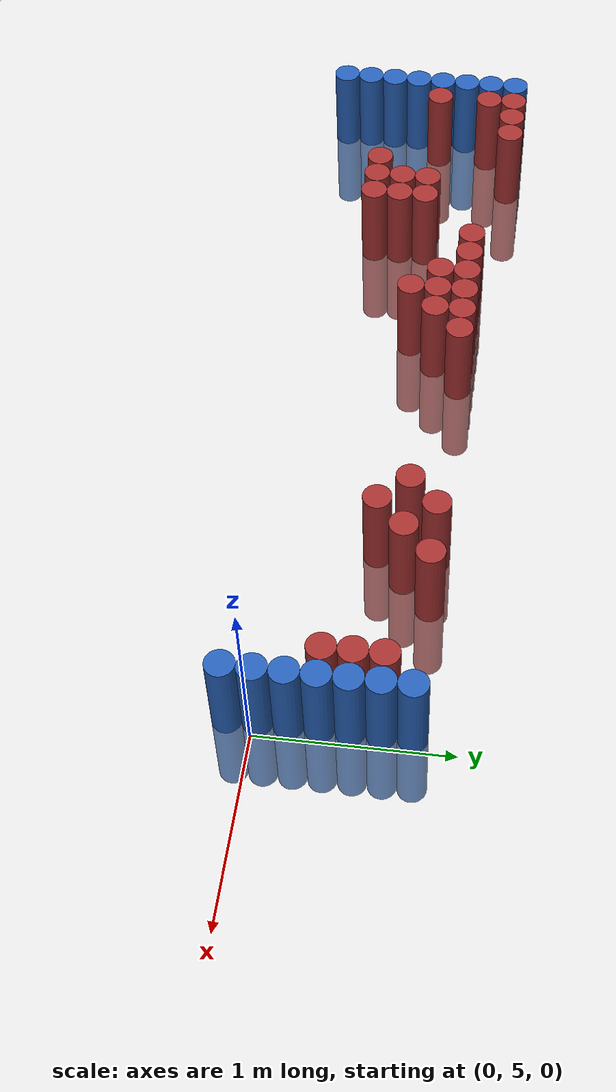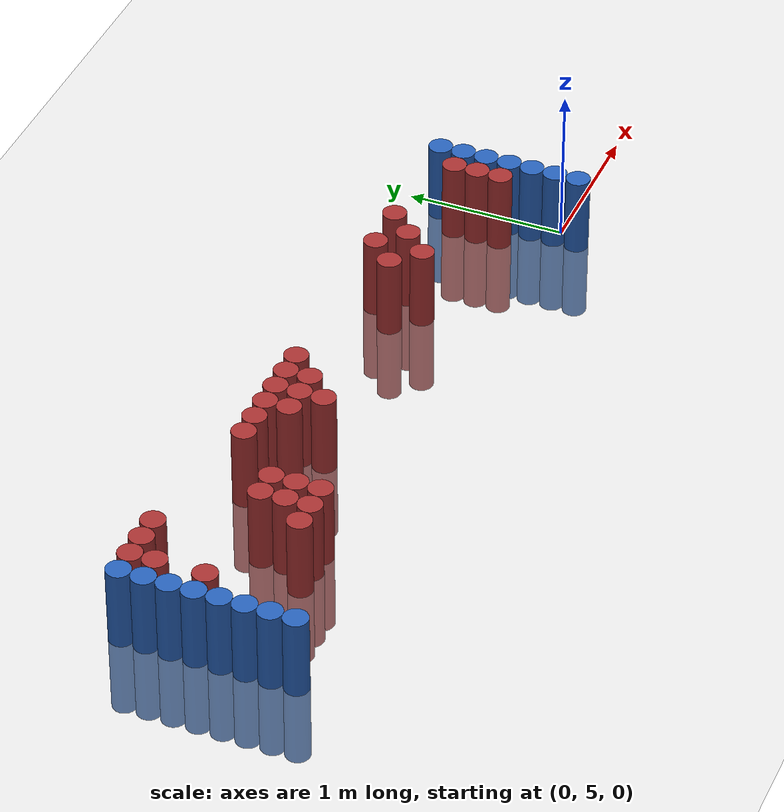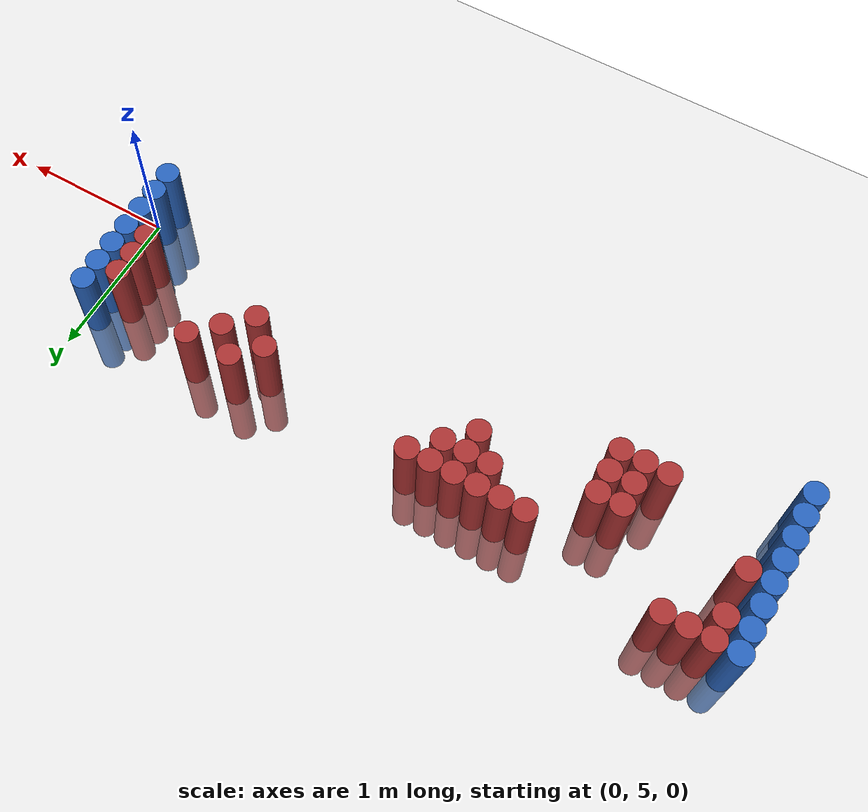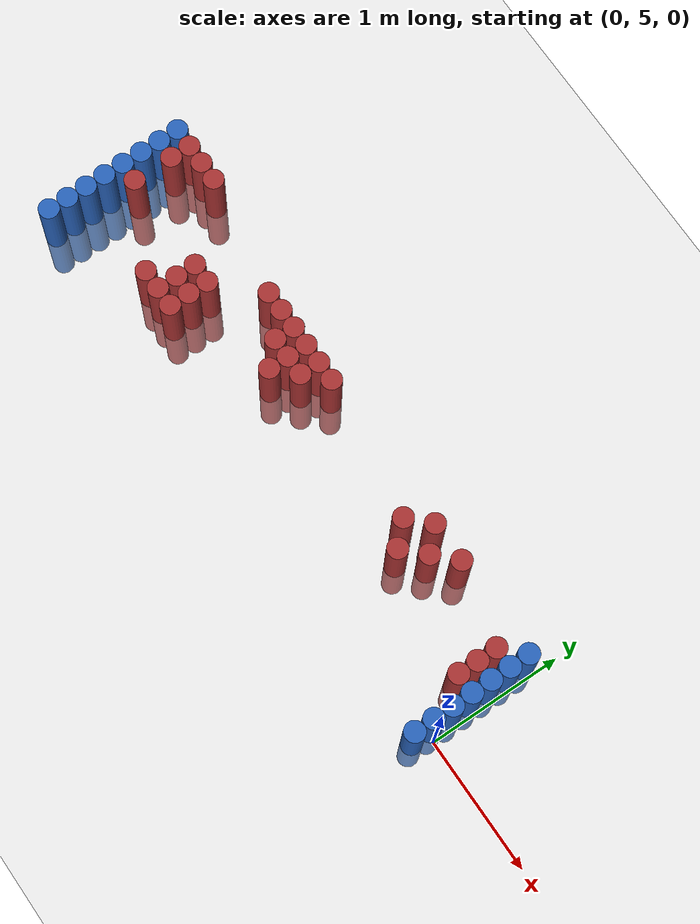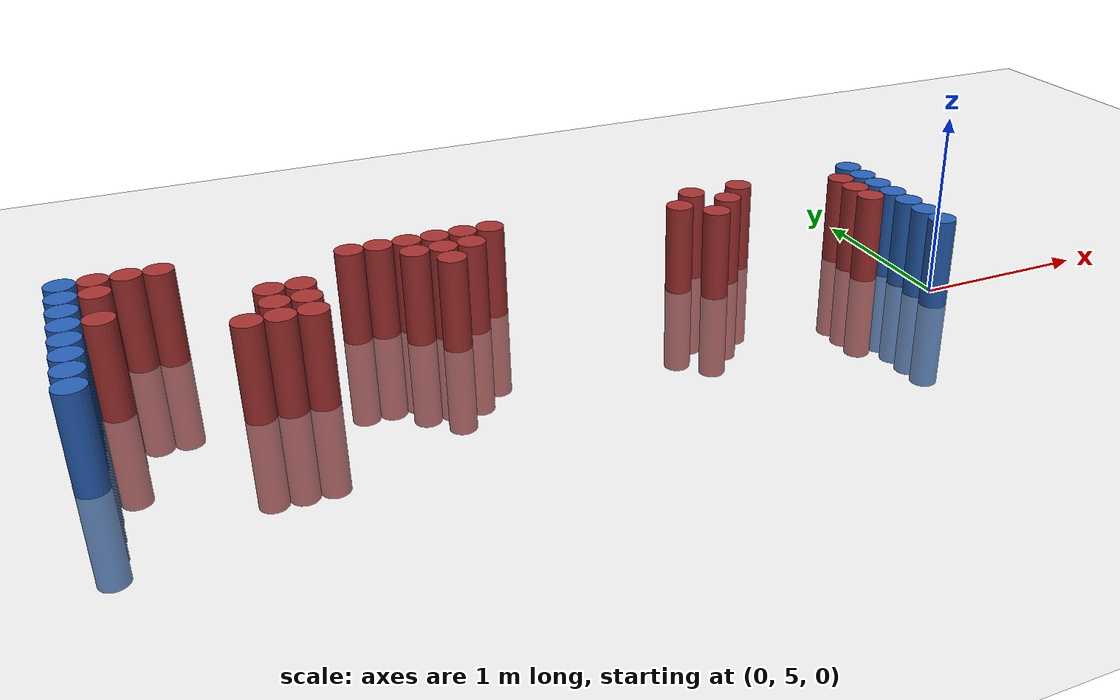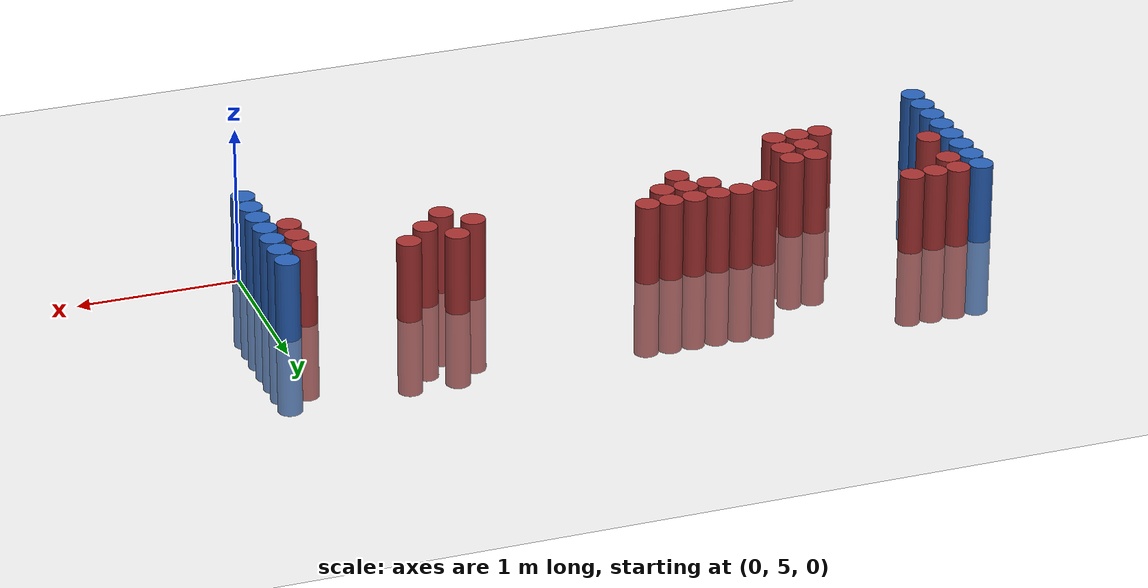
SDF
<sdf version="1.6">
 <world name="default">
  <model name="ground_plane">
   <static>1</static>
   <link name="link">
    <collision name="collision">
     <geometry><plane><normal>0 0 1</normal><size>100 100</size></plane></geometry>
     <surface><friction><ode><mu>100</mu><mu2>50</mu2></ode></friction></surface>
    </collision>
    <visual name="visual">
     <cast_shadows>0</cast_shadows>
     <geometry><plane><normal>0 0 1</normal><size>100 100</size></plane></geometry>
     <material>
      <script><uri>file://media/materials/scripts/gazebo.material</uri><name>Gazebo/Grey</name></script>
     </material>
    </visual>
   </link>
  </model>
  <model name="unit_cylinder_92">
   <static>1</static>
   <pose>-0.075000 4.875000 0.000000 0.000000 0.000000 0.000000</pose>
   <link name="link">
    <inertial>
     <mass>1</mass>
     <inertia><ixx>0.145833</ixx><ixy>0</ixy><ixz>0</ixz><iyy>0.145833</iyy><iyz>0</iyz><izz>0.125</izz></inertia>
    </inertial>
    <collision name="collision">
     <geometry><cylinder><radius>0.075000</radius><length>1</length></cylinder></geometry>
    </collision>
    <visual name="visual">
     <geometry><cylinder><radius>0.075000</radius><length>1</length></cylinder></geometry>
     <material>
      <ambient>0.152000 0.379000 0.720000 1</ambient>
      <diffuse>0.152000 0.379000 0.720000 1</diffuse>
     </material>
     <material>
      <script><name>Gazebo/Grey</name><uri>file://media/materials/scripts/gazebo.material</uri></script>
     </material>
    </visual>
   </link>
  </model>
  <model name="unit_cylinder_93">
   <static>1</static>
   <pose>-4.425000 4.875000 0.000000 0.000000 0.000000 0.000000</pose>
   <link name="link">
    <inertial>
     <mass>1</mass>
     <inertia><ixx>0.145833</ixx><ixy>0</ixy><ixz>0</ixz><iyy>0.145833</iyy><iyz>0</iyz><izz>0.125</izz></inertia>
    </inertial>
    <collision name="collision">
     <geometry><cylinder><radius>0.075000</radius><length>1</length></cylinder></geometry>
    </collision>
    <visual name="visual">
     <geometry><cylinder><radius>0.075000</radius><length>1</length></cylinder></geometry>
     <material>
      <ambient>0.152000 0.379000 0.720000 1</ambient>
      <diffuse>0.152000 0.379000 0.720000 1</diffuse>
     </material>
     <material>
      <script><name>Gazebo/Grey</name><uri>file://media/materials/scripts/gazebo.material</uri></script>
     </material>
    </visual>
   </link>
  </model>
  <model name="unit_cylinder_94">
   <static>1</static>
   <pose>-0.075000 5.025000 0.000000 0.000000 0.000000 0.000000</pose>
   <link name="link">
    <inertial>
     <mass>1</mass>
     <inertia><ixx>0.145833</ixx><ixy>0</ixy><ixz>0</ixz><iyy>0.145833</iyy><iyz>0</iyz><izz>0.125</izz></inertia>
    </inertial>
    <collision name="collision">
     <geometry><cylinder><radius>0.075000</radius><length>1</length></cylinder></geometry>
    </collision>
    <visual name="visual">
     <geometry><cylinder><radius>0.075000</radius><length>1</length></cylinder></geometry>
     <material>
      <ambient>0.152000 0.379000 0.720000 1</ambient>
      <diffuse>0.152000 0.379000 0.720000 1</diffuse>
     </material>
     <material>
      <script><name>Gazebo/Grey</name><uri>file://media/materials/scripts/gazebo.material</uri></script>
     </material>
    </visual>
   </link>
  </model>
  <model name="unit_cylinder_95">
   <static>1</static>
   <pose>-4.425000 5.025000 0.000000 0.000000 0.000000 0.000000</pose>
   <link name="link">
    <inertial>
     <mass>1</mass>
     <inertia><ixx>0.145833</ixx><ixy>0</ixy><ixz>0</ixz><iyy>0.145833</iyy><iyz>0</iyz><izz>0.125</izz></inertia>
    </inertial>
    <collision name="collision">
     <geometry><cylinder><radius>0.075000</radius><length>1</length></cylinder></geometry>
    </collision>
    <visual name="visual">
     <geometry><cylinder><radius>0.075000</radius><length>1</length></cylinder></geometry>
     <material>
      <ambient>0.152000 0.379000 0.720000 1</ambient>
      <diffuse>0.152000 0.379000 0.720000 1</diffuse>
     </material>
     <material>
      <script><name>Gazebo/Grey</name><uri>file://media/materials/scripts/gazebo.material</uri></script>
     </material>
    </visual>
   </link>
  </model>
  <model name="unit_cylinder_96">
   <static>1</static>
   <pose>-4.425000 5.175000 0.000000 0.000000 0.000000 0.000000</pose>
   <link name="link">
    <inertial>
     <mass>1</mass>
     <inertia><ixx>0.145833</ixx><ixy>0</ixy><ixz>0</ixz><iyy>0.145833</iyy><iyz>0</iyz><izz>0.125</izz></inertia>
    </inertial>
    <collision name="collision">
     <geometry><cylinder><radius>0.075000</radius><length>1</length></cylinder></geometry>
    </collision>
    <visual name="visual">
     <geometry><cylinder><radius>0.075000</radius><length>1</length></cylinder></geometry>
     <material>
      <ambient>0.152000 0.379000 0.720000 1</ambient>
      <diffuse>0.152000 0.379000 0.720000 1</diffuse>
     </material>
     <material>
      <script><name>Gazebo/Grey</name><uri>file://media/materials/scripts/gazebo.material</uri></script>
     </material>
    </visual>
   </link>
  </model>
  <model name="unit_cylinder_97">
   <static>1</static>
   <pose>-4.425000 5.325000 0.000000 0.000000 0.000000 0.000000</pose>
   <link name="link">
    <inertial>
     <mass>1</mass>
     <inertia><ixx>0.145833</ixx><ixy>0</ixy><ixz>0</ixz><iyy>0.145833</iyy><iyz>0</iyz><izz>0.125</izz></inertia>
    </inertial>
    <collision name="collision">
     <geometry><cylinder><radius>0.075000</radius><length>1</length></cylinder></geometry>
    </collision>
    <visual name="visual">
     <geometry><cylinder><radius>0.075000</radius><length>1</length></cylinder></geometry>
     <material>
      <ambient>0.152000 0.379000 0.720000 1</ambient>
      <diffuse>0.152000 0.379000 0.720000 1</diffuse>
     </material>
     <material>
      <script><name>Gazebo/Grey</name><uri>file://media/materials/scripts/gazebo.material</uri></script>
     </material>
    </visual>
   </link>
  </model>
  <model name="unit_cylinder_98">
   <static>1</static>
   <pose>-4.425000 5.475000 0.000000 0.000000 0.000000 0.000000</pose>
   <link name="link">
    <inertial>
     <mass>1</mass>
     <inertia><ixx>0.145833</ixx><ixy>0</ixy><ixz>0</ixz><iyy>0.145833</iyy><iyz>0</iyz><izz>0.125</izz></inertia>
    </inertial>
    <collision name="collision">
     <geometry><cylinder><radius>0.075000</radius><length>1</length></cylinder></geometry>
    </collision>
    <visual name="visual">
     <geometry><cylinder><radius>0.075000</radius><length>1</length></cylinder></geometry>
     <material>
      <ambient>0.152000 0.379000 0.720000 1</ambient>
      <diffuse>0.152000 0.379000 0.720000 1</diffuse>
     </material>
     <material>
      <script><name>Gazebo/Grey</name><uri>file://media/materials/scripts/gazebo.material</uri></script>
     </material>
    </visual>
   </link>
  </model>
  <model name="unit_cylinder_99">
   <static>1</static>
   <pose>-4.425000 5.625000 0.000000 0.000000 0.000000 0.000000</pose>
   <link name="link">
    <inertial>
     <mass>1</mass>
     <inertia><ixx>0.145833</ixx><ixy>0</ixy><ixz>0</ixz><iyy>0.145833</iyy><iyz>0</iyz><izz>0.125</izz></inertia>
    </inertial>
    <collision name="collision">
     <geometry><cylinder><radius>0.075000</radius><length>1</length></cylinder></geometry>
    </collision>
    <visual name="visual">
     <geometry><cylinder><radius>0.075000</radius><length>1</length></cylinder></geometry>
     <material>
      <ambient>0.152000 0.379000 0.720000 1</ambient>
      <diffuse>0.152000 0.379000 0.720000 1</diffuse>
     </material>
     <material>
      <script><name>Gazebo/Grey</name><uri>file://media/materials/scripts/gazebo.material</uri></script>
     </material>
    </visual>
   </link>
  </model>
  <model name="unit_cylinder_100">
   <static>1</static>
   <pose>-4.425000 5.775000 0.000000 0.000000 0.000000 0.000000</pose>
   <link name="link">
    <inertial>
     <mass>1</mass>
     <inertia><ixx>0.145833</ixx><ixy>0</ixy><ixz>0</ixz><iyy>0.145833</iyy><iyz>0</iyz><izz>0.125</izz></inertia>
    </inertial>
    <collision name="collision">
     <geometry><cylinder><radius>0.075000</radius><length>1</length></cylinder></geometry>
    </collision>
    <visual name="visual">
     <geometry><cylinder><radius>0.075000</radius><length>1</length></cylinder></geometry>
     <material>
      <ambient>0.152000 0.379000 0.720000 1</ambient>
      <diffuse>0.152000 0.379000 0.720000 1</diffuse>
     </material>
     <material>
      <script><name>Gazebo/Grey</name><uri>file://media/materials/scripts/gazebo.material</uri></script>
     </material>
    </visual>
   </link>
  </model>
  <model name="unit_cylinder_101">
   <static>1</static>
   <pose>-4.425000 5.925000 0.000000 0.000000 0.000000 0.000000</pose>
   <link name="link">
    <inertial>
     <mass>1</mass>
     <inertia><ixx>0.145833</ixx><ixy>0</ixy><ixz>0</ixz><iyy>0.145833</iyy><iyz>0</iyz><izz>0.125</izz></inertia>
    </inertial>
    <collision name="collision">
     <geometry><cylinder><radius>0.075000</radius><length>1</length></cylinder></geometry>
    </collision>
    <visual name="visual">
     <geometry><cylinder><radius>0.075000</radius><length>1</length></cylinder></geometry>
     <material>
      <ambient>0.152000 0.379000 0.720000 1</ambient>
      <diffuse>0.152000 0.379000 0.720000 1</diffuse>
     </material>
     <material>
      <script><name>Gazebo/Grey</name><uri>file://media/materials/scripts/gazebo.material</uri></script>
     </material>
    </visual>
   </link>
  </model>
  <model name="unit_cylinder_126">
   <static>1</static>
   <pose>-4.275000 5.475000 0.000000 0.000000 0.000000 0.000000</pose>
   <link name="link">
    <inertial>
     <mass>1</mass>
     <inertia><ixx>0.145833</ixx><ixy>0</ixy><ixz>0</ixz><iyy>0.145833</iyy><iyz>0</iyz><izz>0.125</izz></inertia>
    </inertial>
    <collision name="collision">
     <geometry><cylinder><radius>0.075000</radius><length>1</length></cylinder></geometry>
    </collision>
    <visual name="visual">
     <geometry><cylinder><radius>0.075000</radius><length>1</length></cylinder></geometry>
     <material>
      <ambient>0.648000 0.192000 0.192000 1</ambient>
      <diffuse>0.648000 0.192000 0.192000 1</diffuse>
     </material>
     <material>
      <script><name>Gazebo/Grey</name><uri>file://media/materials/scripts/gazebo.material</uri></script>
     </material>
    </visual>
   </link>
  </model>
  <model name="unit_cylinder_127">
   <static>1</static>
   <pose>-4.275000 5.775000 0.000000 0.000000 0.000000 0.000000</pose>
   <link name="link">
    <inertial>
     <mass>1</mass>
     <inertia><ixx>0.145833</ixx><ixy>0</ixy><ixz>0</ixz><iyy>0.145833</iyy><iyz>0</iyz><izz>0.125</izz></inertia>
    </inertial>
    <collision name="collision">
     <geometry><cylinder><radius>0.075000</radius><length>1</length></cylinder></geometry>
    </collision>
    <visual name="visual">
     <geometry><cylinder><radius>0.075000</radius><length>1</length></cylinder></geometry>
     <material>
      <ambient>0.648000 0.192000 0.192000 1</ambient>
      <diffuse>0.648000 0.192000 0.192000 1</diffuse>
     </material>
     <material>
      <script><name>Gazebo/Grey</name><uri>file://media/materials/scripts/gazebo.material</uri></script>
     </material>
    </visual>
   </link>
  </model>
  <model name="unit_cylinder_128">
   <static>1</static>
   <pose>-4.275000 5.925000 0.000000 0.000000 0.000000 0.000000</pose>
   <link name="link">
    <inertial>
     <mass>1</mass>
     <inertia><ixx>0.145833</ixx><ixy>0</ixy><ixz>0</ixz><iyy>0.145833</iyy><iyz>0</iyz><izz>0.125</izz></inertia>
    </inertial>
    <collision name="collision">
     <geometry><cylinder><radius>0.075000</radius><length>1</length></cylinder></geometry>
    </collision>
    <visual name="visual">
     <geometry><cylinder><radius>0.075000</radius><length>1</length></cylinder></geometry>
     <material>
      <ambient>0.648000 0.192000 0.192000 1</ambient>
      <diffuse>0.648000 0.192000 0.192000 1</diffuse>
     </material>
     <material>
      <script><name>Gazebo/Grey</name><uri>file://media/materials/scripts/gazebo.material</uri></script>
     </material>
    </visual>
   </link>
  </model>
  <model name="unit_cylinder_141">
   <static>1</static>
   <pose>-4.125000 5.925000 0.000000 0.000000 0.000000 0.000000</pose>
   <link name="link">
    <inertial>
     <mass>1</mass>
     <inertia><ixx>0.145833</ixx><ixy>0</ixy><ixz>0</ixz><iyy>0.145833</iyy><iyz>0</iyz><izz>0.125</izz></inertia>
    </inertial>
    <collision name="collision">
     <geometry><cylinder><radius>0.075000</radius><length>1</length></cylinder></geometry>
    </collision>
    <visual name="visual">
     <geometry><cylinder><radius>0.075000</radius><length>1</length></cylinder></geometry>
     <material>
      <ambient>0.648000 0.192000 0.192000 1</ambient>
      <diffuse>0.648000 0.192000 0.192000 1</diffuse>
     </material>
     <material>
      <script><name>Gazebo/Grey</name><uri>file://media/materials/scripts/gazebo.material</uri></script>
     </material>
    </visual>
   </link>
  </model>
  <model name="unit_cylinder_143">
   <static>1</static>
   <pose>-3.975000 5.925000 0.000000 0.000000 0.000000 0.000000</pose>
   <link name="link">
    <inertial>
     <mass>1</mass>
     <inertia><ixx>0.145833</ixx><ixy>0</ixy><ixz>0</ixz><iyy>0.145833</iyy><iyz>0</iyz><izz>0.125</izz></inertia>
    </inertial>
    <collision name="collision">
     <geometry><cylinder><radius>0.075000</radius><length>1</length></cylinder></geometry>
    </collision>
    <visual name="visual">
     <geometry><cylinder><radius>0.075000</radius><length>1</length></cylinder></geometry>
     <material>
      <ambient>0.648000 0.192000 0.192000 1</ambient>
      <diffuse>0.648000 0.192000 0.192000 1</diffuse>
     </material>
     <material>
      <script><name>Gazebo/Grey</name><uri>file://media/materials/scripts/gazebo.material</uri></script>
     </material>
    </visual>
   </link>
  </model>
  <model name="unit_cylinder_148">
   <static>1</static>
   <pose>-3.675000 5.175000 0.000000 0.000000 0.000000 0.000000</pose>
   <link name="link">
    <inertial>
     <mass>1</mass>
     <inertia><ixx>0.145833</ixx><ixy>0</ixy><ixz>0</ixz><iyy>0.145833</iyy><iyz>0</iyz><izz>0.125</izz></inertia>
    </inertial>
    <collision name="collision">
     <geometry><cylinder><radius>0.075000</radius><length>1</length></cylinder></geometry>
    </collision>
    <visual name="visual">
     <geometry><cylinder><radius>0.075000</radius><length>1</length></cylinder></geometry>
     <material>
      <ambient>0.648000 0.192000 0.192000 1</ambient>
      <diffuse>0.648000 0.192000 0.192000 1</diffuse>
     </material>
     <material>
      <script><name>Gazebo/Grey</name><uri>file://media/materials/scripts/gazebo.material</uri></script>
     </material>
    </visual>
   </link>
  </model>
  <model name="unit_cylinder_149">
   <static>1</static>
   <pose>-3.525000 5.175000 0.000000 0.000000 0.000000 0.000000</pose>
   <link name="link">
    <inertial>
     <mass>1</mass>
     <inertia><ixx>0.145833</ixx><ixy>0</ixy><ixz>0</ixz><iyy>0.145833</iyy><iyz>0</iyz><izz>0.125</izz></inertia>
    </inertial>
    <collision name="collision">
     <geometry><cylinder><radius>0.075000</radius><length>1</length></cylinder></geometry>
    </collision>
    <visual name="visual">
     <geometry><cylinder><radius>0.075000</radius><length>1</length></cylinder></geometry>
     <material>
      <ambient>0.648000 0.192000 0.192000 1</ambient>
      <diffuse>0.648000 0.192000 0.192000 1</diffuse>
     </material>
     <material>
      <script><name>Gazebo/Grey</name><uri>file://media/materials/scripts/gazebo.material</uri></script>
     </material>
    </visual>
   </link>
  </model>
  <model name="unit_cylinder_150">
   <static>1</static>
   <pose>-3.525000 5.325000 0.000000 0.000000 0.000000 0.000000</pose>
   <link name="link">
    <inertial>
     <mass>1</mass>
     <inertia><ixx>0.145833</ixx><ixy>0</ixy><ixz>0</ixz><iyy>0.145833</iyy><iyz>0</iyz><izz>0.125</izz></inertia>
    </inertial>
    <collision name="collision">
     <geometry><cylinder><radius>0.075000</radius><length>1</length></cylinder></geometry>
    </collision>
    <visual name="visual">
     <geometry><cylinder><radius>0.075000</radius><length>1</length></cylinder></geometry>
     <material>
      <ambient>0.648000 0.192000 0.192000 1</ambient>
      <diffuse>0.648000 0.192000 0.192000 1</diffuse>
     </material>
     <material>
      <script><name>Gazebo/Grey</name><uri>file://media/materials/scripts/gazebo.material</uri></script>
     </material>
    </visual>
   </link>
  </model>
  <model name="unit_cylinder_151">
   <static>1</static>
   <pose>-3.525000 5.475000 0.000000 0.000000 0.000000 0.000000</pose>
   <link name="link">
    <inertial>
     <mass>1</mass>
     <inertia><ixx>0.145833</ixx><ixy>0</ixy><ixz>0</ixz><iyy>0.145833</iyy><iyz>0</iyz><izz>0.125</izz></inertia>
    </inertial>
    <collision name="collision">
     <geometry><cylinder><radius>0.075000</radius><length>1</length></cylinder></geometry>
    </collision>
    <visual name="visual">
     <geometry><cylinder><radius>0.075000</radius><length>1</length></cylinder></geometry>
     <material>
      <ambient>0.648000 0.192000 0.192000 1</ambient>
      <diffuse>0.648000 0.192000 0.192000 1</diffuse>
     </material>
     <material>
      <script><name>Gazebo/Grey</name><uri>file://media/materials/scripts/gazebo.material</uri></script>
     </material>
    </visual>
   </link>
  </model>
  <model name="unit_cylinder_152">
   <static>1</static>
   <pose>-3.375000 5.175000 0.000000 0.000000 0.000000 0.000000</pose>
   <link name="link">
    <inertial>
     <mass>1</mass>
     <inertia><ixx>0.145833</ixx><ixy>0</ixy><ixz>0</ixz><iyy>0.145833</iyy><iyz>0</iyz><izz>0.125</izz></inertia>
    </inertial>
    <collision name="collision">
     <geometry><cylinder><radius>0.075000</radius><length>1</length></cylinder></geometry>
    </collision>
    <visual name="visual">
     <geometry><cylinder><radius>0.075000</radius><length>1</length></cylinder></geometry>
     <material>
      <ambient>0.648000 0.192000 0.192000 1</ambient>
      <diffuse>0.648000 0.192000 0.192000 1</diffuse>
     </material>
     <material>
      <script><name>Gazebo/Grey</name><uri>file://media/materials/scripts/gazebo.material</uri></script>
     </material>
    </visual>
   </link>
  </model>
  <model name="unit_cylinder_153">
   <static>1</static>
   <pose>-3.375000 5.325000 0.000000 0.000000 0.000000 0.000000</pose>
   <link name="link">
    <inertial>
     <mass>1</mass>
     <inertia><ixx>0.145833</ixx><ixy>0</ixy><ixz>0</ixz><iyy>0.145833</iyy><iyz>0</iyz><izz>0.125</izz></inertia>
    </inertial>
    <collision name="collision">
     <geometry><cylinder><radius>0.075000</radius><length>1</length></cylinder></geometry>
    </collision>
    <visual name="visual">
     <geometry><cylinder><radius>0.075000</radius><length>1</length></cylinder></geometry>
     <material>
      <ambient>0.648000 0.192000 0.192000 1</ambient>
      <diffuse>0.648000 0.192000 0.192000 1</diffuse>
     </material>
     <material>
      <script><name>Gazebo/Grey</name><uri>file://media/materials/scripts/gazebo.material</uri></script>
     </material>
    </visual>
   </link>
  </model>
  <model name="unit_cylinder_154">
   <static>1</static>
   <pose>-3.375000 5.475000 0.000000 0.000000 0.000000 0.000000</pose>
   <link name="link">
    <inertial>
     <mass>1</mass>
     <inertia><ixx>0.145833</ixx><ixy>0</ixy><ixz>0</ixz><iyy>0.145833</iyy><iyz>0</iyz><izz>0.125</izz></inertia>
    </inertial>
    <collision name="collision">
     <geometry><cylinder><radius>0.075000</radius><length>1</length></cylinder></geometry>
    </collision>
    <visual name="visual">
     <geometry><cylinder><radius>0.075000</radius><length>1</length></cylinder></geometry>
     <material>
      <ambient>0.648000 0.192000 0.192000 1</ambient>
      <diffuse>0.648000 0.192000 0.192000 1</diffuse>
     </material>
     <material>
      <script><name>Gazebo/Grey</name><uri>file://media/materials/scripts/gazebo.material</uri></script>
     </material>
    </visual>
   </link>
  </model>
  <model name="unit_cylinder_163">
   <static>1</static>
   <pose>-3.075000 5.775000 0.000000 0.000000 0.000000 0.000000</pose>
   <link name="link">
    <inertial>
     <mass>1</mass>
     <inertia><ixx>0.145833</ixx><ixy>0</ixy><ixz>0</ixz><iyy>0.145833</iyy><iyz>0</iyz><izz>0.125</izz></inertia>
    </inertial>
    <collision name="collision">
     <geometry><cylinder><radius>0.075000</radius><length>1</length></cylinder></geometry>
    </collision>
    <visual name="visual">
     <geometry><cylinder><radius>0.075000</radius><length>1</length></cylinder></geometry>
     <material>
      <ambient>0.648000 0.192000 0.192000 1</ambient>
      <diffuse>0.648000 0.192000 0.192000 1</diffuse>
     </material>
     <material>
      <script><name>Gazebo/Grey</name><uri>file://media/materials/scripts/gazebo.material</uri></script>
     </material>
    </visual>
   </link>
  </model>
  <model name="unit_cylinder_171">
   <static>1</static>
   <pose>-2.925000 5.775000 0.000000 0.000000 0.000000 0.000000</pose>
   <link name="link">
    <inertial>
     <mass>1</mass>
     <inertia><ixx>0.145833</ixx><ixy>0</ixy><ixz>0</ixz><iyy>0.145833</iyy><iyz>0</iyz><izz>0.125</izz></inertia>
    </inertial>
    <collision name="collision">
     <geometry><cylinder><radius>0.075000</radius><length>1</length></cylinder></geometry>
    </collision>
    <visual name="visual">
     <geometry><cylinder><radius>0.075000</radius><length>1</length></cylinder></geometry>
     <material>
      <ambient>0.648000 0.192000 0.192000 1</ambient>
      <diffuse>0.648000 0.192000 0.192000 1</diffuse>
     </material>
     <material>
      <script><name>Gazebo/Grey</name><uri>file://media/materials/scripts/gazebo.material</uri></script>
     </material>
    </visual>
   </link>
  </model>
  <model name="unit_cylinder_176">
   <static>1</static>
   <pose>-2.775000 5.625000 0.000000 0.000000 0.000000 0.000000</pose>
   <link name="link">
    <inertial>
     <mass>1</mass>
     <inertia><ixx>0.145833</ixx><ixy>0</ixy><ixz>0</ixz><iyy>0.145833</iyy><iyz>0</iyz><izz>0.125</izz></inertia>
    </inertial>
    <collision name="collision">
     <geometry><cylinder><radius>0.075000</radius><length>1</length></cylinder></geometry>
    </collision>
    <visual name="visual">
     <geometry><cylinder><radius>0.075000</radius><length>1</length></cylinder></geometry>
     <material>
      <ambient>0.648000 0.192000 0.192000 1</ambient>
      <diffuse>0.648000 0.192000 0.192000 1</diffuse>
     </material>
     <material>
      <script><name>Gazebo/Grey</name><uri>file://media/materials/scripts/gazebo.material</uri></script>
     </material>
    </visual>
   </link>
  </model>
  <model name="unit_cylinder_177">
   <static>1</static>
   <pose>-2.775000 5.775000 0.000000 0.000000 0.000000 0.000000</pose>
   <link name="link">
    <inertial>
     <mass>1</mass>
     <inertia><ixx>0.145833</ixx><ixy>0</ixy><ixz>0</ixz><iyy>0.145833</iyy><iyz>0</iyz><izz>0.125</izz></inertia>
    </inertial>
    <collision name="collision">
     <geometry><cylinder><radius>0.075000</radius><length>1</length></cylinder></geometry>
    </collision>
    <visual name="visual">
     <geometry><cylinder><radius>0.075000</radius><length>1</length></cylinder></geometry>
     <material>
      <ambient>0.648000 0.192000 0.192000 1</ambient>
      <diffuse>0.648000 0.192000 0.192000 1</diffuse>
     </material>
     <material>
      <script><name>Gazebo/Grey</name><uri>file://media/materials/scripts/gazebo.material</uri></script>
     </material>
    </visual>
   </link>
  </model>
  <model name="unit_cylinder_180">
   <static>1</static>
   <pose>-2.625000 5.475000 0.000000 0.000000 0.000000 0.000000</pose>
   <link name="link">
    <inertial>
     <mass>1</mass>
     <inertia><ixx>0.145833</ixx><ixy>0</ixy><ixz>0</ixz><iyy>0.145833</iyy><iyz>0</iyz><izz>0.125</izz></inertia>
    </inertial>
    <collision name="collision">
     <geometry><cylinder><radius>0.075000</radius><length>1</length></cylinder></geometry>
    </collision>
    <visual name="visual">
     <geometry><cylinder><radius>0.075000</radius><length>1</length></cylinder></geometry>
     <material>
      <ambient>0.648000 0.192000 0.192000 1</ambient>
      <diffuse>0.648000 0.192000 0.192000 1</diffuse>
     </material>
     <material>
      <script><name>Gazebo/Grey</name><uri>file://media/materials/scripts/gazebo.material</uri></script>
     </material>
    </visual>
   </link>
  </model>
  <model name="unit_cylinder_181">
   <static>1</static>
   <pose>-2.625000 5.625000 0.000000 0.000000 0.000000 0.000000</pose>
   <link name="link">
    <inertial>
     <mass>1</mass>
     <inertia><ixx>0.145833</ixx><ixy>0</ixy><ixz>0</ixz><iyy>0.145833</iyy><iyz>0</iyz><izz>0.125</izz></inertia>
    </inertial>
    <collision name="collision">
     <geometry><cylinder><radius>0.075000</radius><length>1</length></cylinder></geometry>
    </collision>
    <visual name="visual">
     <geometry><cylinder><radius>0.075000</radius><length>1</length></cylinder></geometry>
     <material>
      <ambient>0.648000 0.192000 0.192000 1</ambient>
      <diffuse>0.648000 0.192000 0.192000 1</diffuse>
     </material>
     <material>
      <script><name>Gazebo/Grey</name><uri>file://media/materials/scripts/gazebo.material</uri></script>
     </material>
    </visual>
   </link>
  </model>
  <model name="unit_cylinder_182">
   <static>1</static>
   <pose>-2.625000 5.775000 0.000000 0.000000 0.000000 0.000000</pose>
   <link name="link">
    <inertial>
     <mass>1</mass>
     <inertia><ixx>0.145833</ixx><ixy>0</ixy><ixz>0</ixz><iyy>0.145833</iyy><iyz>0</iyz><izz>0.125</izz></inertia>
    </inertial>
    <collision name="collision">
     <geometry><cylinder><radius>0.075000</radius><length>1</length></cylinder></geometry>
    </collision>
    <visual name="visual">
     <geometry><cylinder><radius>0.075000</radius><length>1</length></cylinder></geometry>
     <material>
      <ambient>0.648000 0.192000 0.192000 1</ambient>
      <diffuse>0.648000 0.192000 0.192000 1</diffuse>
     </material>
     <material>
      <script><name>Gazebo/Grey</name><uri>file://media/materials/scripts/gazebo.material</uri></script>
     </material>
    </visual>
   </link>
  </model>
  <model name="unit_cylinder_186">
   <static>1</static>
   <pose>-2.475000 5.625000 0.000000 0.000000 0.000000 0.000000</pose>
   <link name="link">
    <inertial>
     <mass>1</mass>
     <inertia><ixx>0.145833</ixx><ixy>0</ixy><ixz>0</ixz><iyy>0.145833</iyy><iyz>0</iyz><izz>0.125</izz></inertia>
    </inertial>
    <collision name="collision">
     <geometry><cylinder><radius>0.075000</radius><length>1</length></cylinder></geometry>
    </collision>
    <visual name="visual">
     <geometry><cylinder><radius>0.075000</radius><length>1</length></cylinder></geometry>
     <material>
      <ambient>0.648000 0.192000 0.192000 1</ambient>
      <diffuse>0.648000 0.192000 0.192000 1</diffuse>
     </material>
     <material>
      <script><name>Gazebo/Grey</name><uri>file://media/materials/scripts/gazebo.material</uri></script>
     </material>
    </visual>
   </link>
  </model>
  <model name="unit_cylinder_187">
   <static>1</static>
   <pose>-2.475000 5.775000 0.000000 0.000000 0.000000 0.000000</pose>
   <link name="link">
    <inertial>
     <mass>1</mass>
     <inertia><ixx>0.145833</ixx><ixy>0</ixy><ixz>0</ixz><iyy>0.145833</iyy><iyz>0</iyz><izz>0.125</izz></inertia>
    </inertial>
    <collision name="collision">
     <geometry><cylinder><radius>0.075000</radius><length>1</length></cylinder></geometry>
    </collision>
    <visual name="visual">
     <geometry><cylinder><radius>0.075000</radius><length>1</length></cylinder></geometry>
     <material>
      <ambient>0.648000 0.192000 0.192000 1</ambient>
      <diffuse>0.648000 0.192000 0.192000 1</diffuse>
     </material>
     <material>
      <script><name>Gazebo/Grey</name><uri>file://media/materials/scripts/gazebo.material</uri></script>
     </material>
    </visual>
   </link>
  </model>
  <model name="unit_cylinder_190">
   <static>1</static>
   <pose>-2.325000 5.775000 0.000000 0.000000 0.000000 0.000000</pose>
   <link name="link">
    <inertial>
     <mass>1</mass>
     <inertia><ixx>0.145833</ixx><ixy>0</ixy><ixz>0</ixz><iyy>0.145833</iyy><iyz>0</iyz><izz>0.125</izz></inertia>
    </inertial>
    <collision name="collision">
     <geometry><cylinder><radius>0.075000</radius><length>1</length></cylinder></geometry>
    </collision>
    <visual name="visual">
     <geometry><cylinder><radius>0.075000</radius><length>1</length></cylinder></geometry>
     <material>
      <ambient>0.648000 0.192000 0.192000 1</ambient>
      <diffuse>0.648000 0.192000 0.192000 1</diffuse>
     </material>
     <material>
      <script><name>Gazebo/Grey</name><uri>file://media/materials/scripts/gazebo.material</uri></script>
     </material>
    </visual>
   </link>
  </model>
  <model name="unit_cylinder_203">
   <static>1</static>
   <pose>-1.275000 5.625000 0.000000 0.000000 0.000000 0.000000</pose>
   <link name="link">
    <inertial>
     <mass>1</mass>
     <inertia><ixx>0.145833</ixx><ixy>0</ixy><ixz>0</ixz><iyy>0.145833</iyy><iyz>0</iyz><izz>0.125</izz></inertia>
    </inertial>
    <collision name="collision">
     <geometry><cylinder><radius>0.075000</radius><length>1</length></cylinder></geometry>
    </collision>
    <visual name="visual">
     <geometry><cylinder><radius>0.075000</radius><length>1</length></cylinder></geometry>
     <material>
      <ambient>0.648000 0.192000 0.192000 1</ambient>
      <diffuse>0.648000 0.192000 0.192000 1</diffuse>
     </material>
     <material>
      <script><name>Gazebo/Grey</name><uri>file://media/materials/scripts/gazebo.material</uri></script>
     </material>
    </visual>
   </link>
  </model>
  <model name="unit_cylinder_209">
   <static>1</static>
   <pose>-1.125000 5.475000 0.000000 0.000000 0.000000 0.000000</pose>
   <link name="link">
    <inertial>
     <mass>1</mass>
     <inertia><ixx>0.145833</ixx><ixy>0</ixy><ixz>0</ixz><iyy>0.145833</iyy><iyz>0</iyz><izz>0.125</izz></inertia>
    </inertial>
    <collision name="collision">
     <geometry><cylinder><radius>0.075000</radius><length>1</length></cylinder></geometry>
    </collision>
    <visual name="visual">
     <geometry><cylinder><radius>0.075000</radius><length>1</length></cylinder></geometry>
     <material>
      <ambient>0.648000 0.192000 0.192000 1</ambient>
      <diffuse>0.648000 0.192000 0.192000 1</diffuse>
     </material>
     <material>
      <script><name>Gazebo/Grey</name><uri>file://media/materials/scripts/gazebo.material</uri></script>
     </material>
    </visual>
   </link>
  </model>
  <model name="unit_cylinder_210">
   <static>1</static>
   <pose>-1.125000 5.775000 0.000000 0.000000 0.000000 0.000000</pose>
   <link name="link">
    <inertial>
     <mass>1</mass>
     <inertia><ixx>0.145833</ixx><ixy>0</ixy><ixz>0</ixz><iyy>0.145833</iyy><iyz>0</iyz><izz>0.125</izz></inertia>
    </inertial>
    <collision name="collision">
     <geometry><cylinder><radius>0.075000</radius><length>1</length></cylinder></geometry>
    </collision>
    <visual name="visual">
     <geometry><cylinder><radius>0.075000</radius><length>1</length></cylinder></geometry>
     <material>
      <ambient>0.648000 0.192000 0.192000 1</ambient>
      <diffuse>0.648000 0.192000 0.192000 1</diffuse>
     </material>
     <material>
      <script><name>Gazebo/Grey</name><uri>file://media/materials/scripts/gazebo.material</uri></script>
     </material>
    </visual>
   </link>
  </model>
  <model name="unit_cylinder_215">
   <static>1</static>
   <pose>-0.975000 5.625000 0.000000 0.000000 0.000000 0.000000</pose>
   <link name="link">
    <inertial>
     <mass>1</mass>
     <inertia><ixx>0.145833</ixx><ixy>0</ixy><ixz>0</ixz><iyy>0.145833</iyy><iyz>0</iyz><izz>0.125</izz></inertia>
    </inertial>
    <collision name="collision">
     <geometry><cylinder><radius>0.075000</radius><length>1</length></cylinder></geometry>
    </collision>
    <visual name="visual">
     <geometry><cylinder><radius>0.075000</radius><length>1</length></cylinder></geometry>
     <material>
      <ambient>0.648000 0.192000 0.192000 1</ambient>
      <diffuse>0.648000 0.192000 0.192000 1</diffuse>
     </material>
     <material>
      <script><name>Gazebo/Grey</name><uri>file://media/materials/scripts/gazebo.material</uri></script>
     </material>
    </visual>
   </link>
  </model>
  <model name="unit_cylinder_219">
   <static>1</static>
   <pose>-0.825000 5.775000 0.000000 0.000000 0.000000 0.000000</pose>
   <link name="link">
    <inertial>
     <mass>1</mass>
     <inertia><ixx>0.145833</ixx><ixy>0</ixy><ixz>0</ixz><iyy>0.145833</iyy><iyz>0</iyz><izz>0.125</izz></inertia>
    </inertial>
    <collision name="collision">
     <geometry><cylinder><radius>0.075000</radius><length>1</length></cylinder></geometry>
    </collision>
    <visual name="visual">
     <geometry><cylinder><radius>0.075000</radius><length>1</length></cylinder></geometry>
     <material>
      <ambient>0.648000 0.192000 0.192000 1</ambient>
      <diffuse>0.648000 0.192000 0.192000 1</diffuse>
     </material>
     <material>
      <script><name>Gazebo/Grey</name><uri>file://media/materials/scripts/gazebo.material</uri></script>
     </material>
    </visual>
   </link>
  </model>
  <model name="unit_cylinder_228">
   <static>1</static>
   <pose>-0.225000 5.325000 0.000000 0.000000 0.000000 0.000000</pose>
   <link name="link">
    <inertial>
     <mass>1</mass>
     <inertia><ixx>0.145833</ixx><ixy>0</ixy><ixz>0</ixz><iyy>0.145833</iyy><iyz>0</iyz><izz>0.125</izz></inertia>
    </inertial>
    <collision name="collision">
     <geometry><cylinder><radius>0.075000</radius><length>1</length></cylinder></geometry>
    </collision>
    <visual name="visual">
     <geometry><cylinder><radius>0.075000</radius><length>1</length></cylinder></geometry>
     <material>
      <ambient>0.648000 0.192000 0.192000 1</ambient>
      <diffuse>0.648000 0.192000 0.192000 1</diffuse>
     </material>
     <material>
      <script><name>Gazebo/Grey</name><uri>file://media/materials/scripts/gazebo.material</uri></script>
     </material>
    </visual>
   </link>
  </model>
  <model name="unit_cylinder_229">
   <static>1</static>
   <pose>-0.225000 5.475000 0.000000 0.000000 0.000000 0.000000</pose>
   <link name="link">
    <inertial>
     <mass>1</mass>
     <inertia><ixx>0.145833</ixx><ixy>0</ixy><ixz>0</ixz><iyy>0.145833</iyy><iyz>0</iyz><izz>0.125</izz></inertia>
    </inertial>
    <collision name="collision">
     <geometry><cylinder><radius>0.075000</radius><length>1</length></cylinder></geometry>
    </collision>
    <visual name="visual">
     <geometry><cylinder><radius>0.075000</radius><length>1</length></cylinder></geometry>
     <material>
      <ambient>0.648000 0.192000 0.192000 1</ambient>
      <diffuse>0.648000 0.192000 0.192000 1</diffuse>
     </material>
     <material>
      <script><name>Gazebo/Grey</name><uri>file://media/materials/scripts/gazebo.material</uri></script>
     </material>
    </visual>
   </link>
  </model>
  <model name="unit_cylinder_230">
   <static>1</static>
   <pose>-0.225000 5.625000 0.000000 0.000000 0.000000 0.000000</pose>
   <link name="link">
    <inertial>
     <mass>1</mass>
     <inertia><ixx>0.145833</ixx><ixy>0</ixy><ixz>0</ixz><iyy>0.145833</iyy><iyz>0</iyz><izz>0.125</izz></inertia>
    </inertial>
    <collision name="collision">
     <geometry><cylinder><radius>0.075000</radius><length>1</length></cylinder></geometry>
    </collision>
    <visual name="visual">
     <geometry><cylinder><radius>0.075000</radius><length>1</length></cylinder></geometry>
     <material>
      <ambient>0.648000 0.192000 0.192000 1</ambient>
      <diffuse>0.648000 0.192000 0.192000 1</diffuse>
     </material>
     <material>
      <script><name>Gazebo/Grey</name><uri>file://media/materials/scripts/gazebo.material</uri></script>
     </material>
    </visual>
   </link>
  </model>
  <model name="unit_cylinder_244">
   <static>1</static>
   <pose>-0.075000 5.175000 0.000000 0.000000 0.000000 0.000000</pose>
   <link name="link">
    <inertial>
     <mass>1</mass>
     <inertia><ixx>0.145833</ixx><ixy>0</ixy><ixz>0</ixz><iyy>0.145833</iyy><iyz>0</iyz><izz>0.125</izz></inertia>
    </inertial>
    <collision name="collision">
     <geometry><cylinder><radius>0.075000</radius><length>1</length></cylinder></geometry>
    </collision>
    <visual name="visual">
     <geometry><cylinder><radius>0.075000</radius><length>1</length></cylinder></geometry>
     <material>
      <ambient>0.152000 0.379000 0.720000 1</ambient>
      <diffuse>0.152000 0.379000 0.720000 1</diffuse>
     </material>
     <material>
      <script><name>Gazebo/Grey</name><uri>file://media/materials/scripts/gazebo.material</uri></script>
     </material>
    </visual>
   </link>
  </model>
  <model name="unit_cylinder_245">
   <static>1</static>
   <pose>-0.075000 5.325000 0.000000 0.000000 0.000000 0.000000</pose>
   <link name="link">
    <inertial>
     <mass>1</mass>
     <inertia><ixx>0.145833</ixx><ixy>0</ixy><ixz>0</ixz><iyy>0.145833</iyy><iyz>0</iyz><izz>0.125</izz></inertia>
    </inertial>
    <collision name="collision">
     <geometry><cylinder><radius>0.075000</radius><length>1</length></cylinder></geometry>
    </collision>
    <visual name="visual">
     <geometry><cylinder><radius>0.075000</radius><length>1</length></cylinder></geometry>
     <material>
      <ambient>0.152000 0.379000 0.720000 1</ambient>
      <diffuse>0.152000 0.379000 0.720000 1</diffuse>
     </material>
     <material>
      <script><name>Gazebo/Grey</name><uri>file://media/materials/scripts/gazebo.material</uri></script>
     </material>
    </visual>
   </link>
  </model>
  <model name="unit_cylinder_246">
   <static>1</static>
   <pose>-0.075000 5.475000 0.000000 0.000000 0.000000 0.000000</pose>
   <link name="link">
    <inertial>
     <mass>1</mass>
     <inertia><ixx>0.145833</ixx><ixy>0</ixy><ixz>0</ixz><iyy>0.145833</iyy><iyz>0</iyz><izz>0.125</izz></inertia>
    </inertial>
    <collision name="collision">
     <geometry><cylinder><radius>0.075000</radius><length>1</length></cylinder></geometry>
    </collision>
    <visual name="visual">
     <geometry><cylinder><radius>0.075000</radius><length>1</length></cylinder></geometry>
     <material>
      <ambient>0.152000 0.379000 0.720000 1</ambient>
      <diffuse>0.152000 0.379000 0.720000 1</diffuse>
     </material>
     <material>
      <script><name>Gazebo/Grey</name><uri>file://media/materials/scripts/gazebo.material</uri></script>
     </material>
    </visual>
   </link>
  </model>
  <model name="unit_cylinder_247">
   <static>1</static>
   <pose>-0.075000 5.625000 0.000000 0.000000 0.000000 0.000000</pose>
   <link name="link">
    <inertial>
     <mass>1</mass>
     <inertia><ixx>0.145833</ixx><ixy>0</ixy><ixz>0</ixz><iyy>0.145833</iyy><iyz>0</iyz><izz>0.125</izz></inertia>
    </inertial>
    <collision name="collision">
     <geometry><cylinder><radius>0.075000</radius><length>1</length></cylinder></geometry>
    </collision>
    <visual name="visual">
     <geometry><cylinder><radius>0.075000</radius><length>1</length></cylinder></geometry>
     <material>
      <ambient>0.152000 0.379000 0.720000 1</ambient>
      <diffuse>0.152000 0.379000 0.720000 1</diffuse>
     </material>
     <material>
      <script><name>Gazebo/Grey</name><uri>file://media/materials/scripts/gazebo.material</uri></script>
     </material>
    </visual>
   </link>
  </model>
  <model name="unit_cylinder_248">
   <static>1</static>
   <pose>-0.075000 5.775000 0.000000 0.000000 0.000000 0.000000</pose>
   <link name="link">
    <inertial>
     <mass>1</mass>
     <inertia><ixx>0.145833</ixx><ixy>0</ixy><ixz>0</ixz><iyy>0.145833</iyy><iyz>0</iyz><izz>0.125</izz></inertia>
    </inertial>
    <collision name="collision">
     <geometry><cylinder><radius>0.075000</radius><length>1</length></cylinder></geometry>
    </collision>
    <visual name="visual">
     <geometry><cylinder><radius>0.075000</radius><length>1</length></cylinder></geometry>
     <material>
      <ambient>0.152000 0.379000 0.720000 1</ambient>
      <diffuse>0.152000 0.379000 0.720000 1</diffuse>
     </material>
     <material>
      <script><name>Gazebo/Grey</name><uri>file://media/materials/scripts/gazebo.material</uri></script>
     </material>
    </visual>
   </link>
  </model>
 </world>
</sdf>
